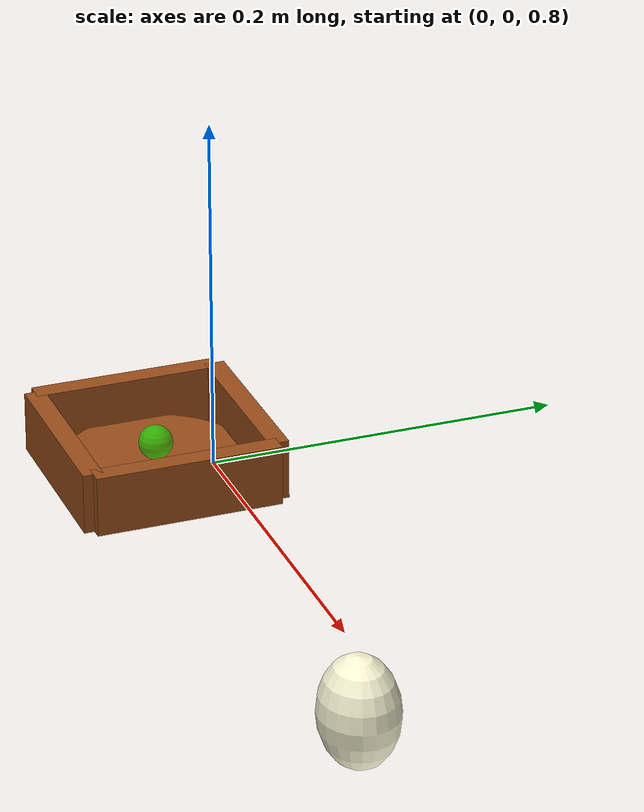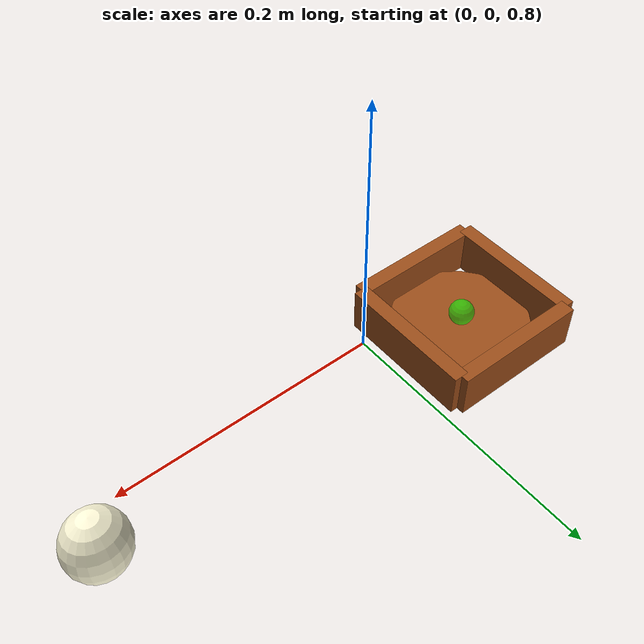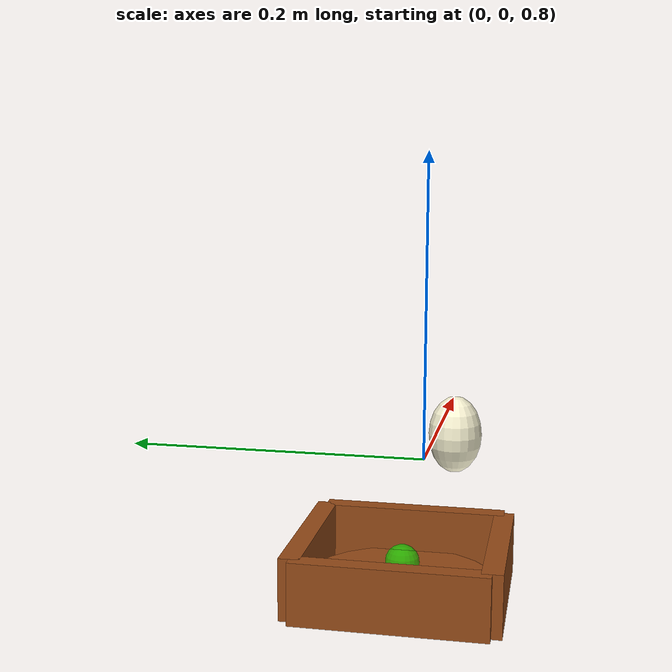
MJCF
<mujoco model="egg">
  <worldbody>
    <!-- Egg: ellipsoid approximated with sphere scaled via size -->
    <body name="egg" pos="0.22 0.0 0.765">
      <freejoint name="egg_free"/>
      <geom name="egg_geom"
            type="ellipsoid"
            size="0.025 0.022 0.032"
            mass="0.065"
            friction="0.8 0.1 0.005"
            condim="4"
            rgba="1.0 0.98 0.85 1"
            contype="1" conaffinity="1"/>
      <site name="egg_center" size="0.005" rgba="1 1 0 0.5"/>
    </body>

    <!-- Bowl / tray target -->
    <body name="bowl" pos="-0.10 0.0 0.75">
      <!-- Bowl floor -->
      <geom name="bowl_floor"
            type="cylinder"
            size="0.055 0.005"
            pos="0 0 0"
            rgba="0.6 0.3 0.1 1"
            contype="1" conaffinity="1"/>
      <!-- Bowl wall (thin ring, 4 sides approximation) -->
      <geom name="bowl_wall_f" type="box" size="0.055 0.006 0.018" pos="0  0.055 0.013" rgba="0.6 0.3 0.1 1"/>
      <geom name="bowl_wall_b" type="box" size="0.055 0.006 0.018" pos="0 -0.055 0.013" rgba="0.6 0.3 0.1 1"/>
      <geom name="bowl_wall_l" type="box" size="0.006 0.055 0.018" pos="-0.055 0 0.013" rgba="0.6 0.3 0.1 1"/>
      <geom name="bowl_wall_r" type="box" size="0.006 0.055 0.018" pos=" 0.055 0 0.013" rgba="0.6 0.3 0.1 1"/>
      <!-- Success zone site -->
      <site name="bowl_center" size="0.01" pos="0 0 0.015" rgba="0 1 0 0.6"/>
    </body>
  </worldbody>
</mujoco>
